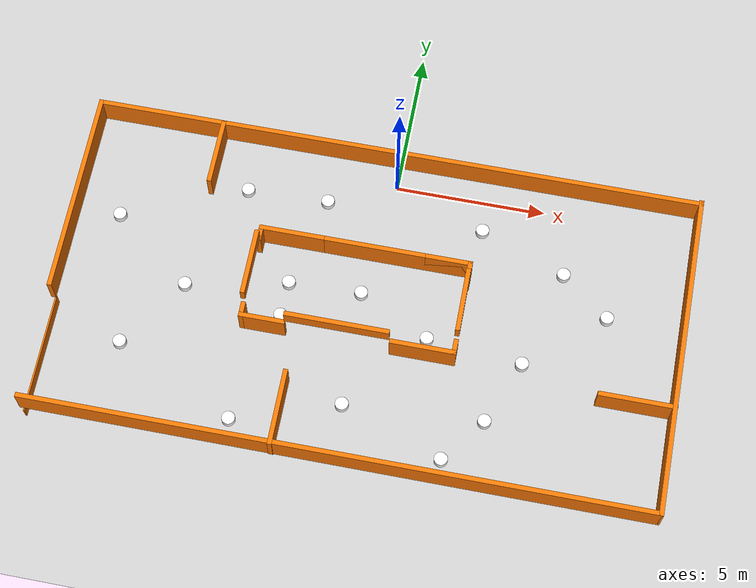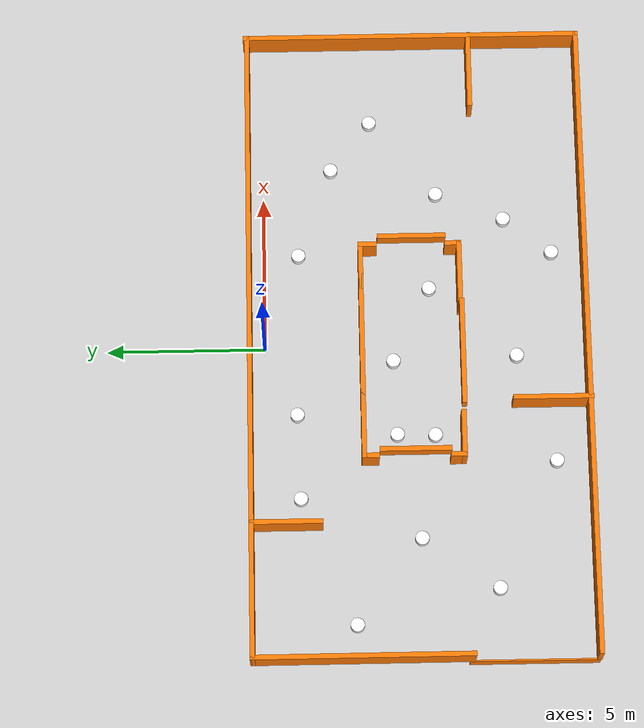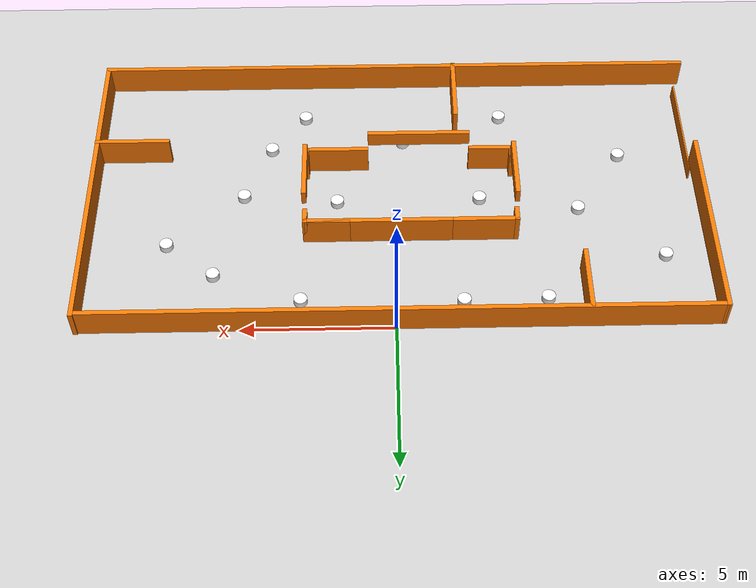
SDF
<sdf version="1.6">
 <world name="default">
  <light name="sun" type="directional">
   <pose>0 0 10 0 -0 0</pose>
   <diffuse>0.8 0.8 0.8 1</diffuse>
   <specular>0.1 0.1 0.1 1</specular>
   <attenuation>
    <range>1000</range>
    <constant>0.9</constant>
    <linear>0.01</linear>
    <quadratic>0.001</quadratic>
   </attenuation>
   <direction>-0.5 0.5 -1</direction>
  </light>
  <model name="ground_plane">
   <static>1</static>
   <link name="link">
    <collision name="collision">
     <geometry><plane><normal>0 0 1</normal><size>100 100</size></plane></geometry>
     <surface><friction><ode><mu>100</mu><mu2>50</mu2></ode></friction></surface>
    </collision>
    <visual name="visual">
     <cast_shadows>0</cast_shadows>
     <geometry><plane><normal>0 0 1</normal><size>100 100</size></plane></geometry>
     <material>
      <script><uri>file://media/materials/scripts/gazebo.material</uri><name>Gazebo/Grey</name></script>
     </material>
    </visual>
   </link>
  </model>
  <gravity>0 0 -9.8</gravity>
  <magnetic_field>6e-06 2.3e-05 -4.2e-05</magnetic_field>
  <atmosphere type="adiabatic"/>
  <physics name="default_physics" default="0" type="ode">
   <max_step_size>0.001</max_step_size>
   <real_time_factor>1</real_time_factor>
   <real_time_update_rate>1000</real_time_update_rate>
  </physics>
  <scene><ambient>0.4 0.4 0.4 1</ambient><background>0.7 0.7 0.7 1</background><shadows>1</shadows></scene>
  <spherical_coordinates>
   <surface_model>EARTH_WGS84</surface_model>
   <latitude_deg>0</latitude_deg>
   <longitude_deg>0</longitude_deg>
   <elevation>0</elevation>
   <heading_deg>0</heading_deg>
  </spherical_coordinates>
  <model name="s-maze">
   <pose>-0.10565 -4.7996 0 0 -0 0</pose>
   <link name="Wall_11">
    <collision name="Wall_11_Collision">
     <geometry><box><size>4 0.15 1.0</size></box></geometry>
     <pose>0 0 1.25 0 -0 0</pose>
    </collision>
    <visual name="Wall_11_Visual">
     <geometry><box><size>4 0.05 1.0</size></box></geometry>
     <material>
      <script><uri>file://media/materials/scripts/gazebo.material</uri><name>Gazebo/Grey</name></script>
      <ambient>0.996078 0.47451 0.0196078 1</ambient>
     </material>
    </visual>
    <pose>-10.048 -3.36287 0 0 0 -1.5708</pose>
   </link>
   <link name="Wall_12">
    <collision name="Wall_12_Collision">
     <geometry><box><size>20.25 0.15 1.0</size></box></geometry>
     <pose>0 0 1.25 0 -0 0</pose>
    </collision>
    <visual name="Wall_12_Visual">
     <pose>0 0 1.25 0 -0 0</pose>
     <geometry><box><size>20.25 0.15 1.0</size></box></geometry>
     <material>
      <script><uri>file://media/materials/scripts/gazebo.material</uri><name>Gazebo/Grey</name></script>
      <ambient>0.996078 0.47451 0.0196078 1</ambient>
     </material>
    </visual>
    <pose>0.001967 -5.28787 0 0 -0 0</pose>
   </link>
   <link name="Wall_13">
    <collision name="Wall_13_Collision">
     <geometry><box><size>10.75 0.15 1.0</size></box></geometry>
     <pose>0 0 1.25 0 -0 0</pose>
    </collision>
    <visual name="Wall_13_Visual">
     <pose>0 0 1.25 0 -0 0</pose>
     <geometry><box><size>10.75 0.15 1.0</size></box></geometry>
     <material>
      <script><uri>file://media/materials/scripts/gazebo.material</uri><name>Gazebo/Grey</name></script>
      <ambient>0.996078 0.47451 0.0196078 1</ambient>
     </material>
    </visual>
    <pose>10.052 0.012131 0 0 -0 1.5708</pose>
   </link>
   <link name="Wall_16">
    <collision name="Wall_16_Collision">
     <geometry><box><size>20.25 0.15 1.0</size></box></geometry>
     <pose>0 0 1.25 0 -0 0</pose>
    </collision>
    <visual name="Wall_16_Visual">
     <pose>0 0 1.25 0 -0 0</pose>
     <geometry><box><size>20.25 0.15 1.0</size></box></geometry>
     <material>
      <script><uri>file://media/materials/scripts/gazebo.material</uri><name>Gazebo/Grey</name></script>
      <ambient>0.996078 0.47451 0.0196078 1</ambient>
     </material>
    </visual>
    <pose>-0.010244 5.26717 0 0 -0 0</pose>
   </link>
   <link name="Wall_18">
    <collision name="Wall_18_Collision">
     <geometry><box><size>2.25 0.15 1.0</size></box></geometry>
     <pose>0 0 1.25 0 -0 0</pose>
    </collision>
    <visual name="Wall_18_Visual">
     <pose>0 0 1.25 0 -0 0</pose>
     <geometry><box><size>2.25 0.15 1.0</size></box></geometry>
     <material>
      <script><uri>file://media/materials/scripts/gazebo.material</uri><name>Gazebo/Grey</name></script>
      <ambient>0.996078 0.47451 0.0196078 1</ambient>
     </material>
    </visual>
    <pose>-5.8756 4.1915 0 0 0 -1.5708</pose>
   </link>
   <link name="Wall_20">
    <collision name="Wall_20_Collision">
     <geometry><box><size>2.5 0.15 1.0</size></box></geometry>
     <pose>0 0 1.25 0 -0 0</pose>
    </collision>
    <visual name="Wall_20_Visual">
     <pose>0 0 1.25 0 -0 0</pose>
     <geometry><box><size>2.5 0.15 1.0</size></box></geometry>
     <material>
      <script><uri>file://media/materials/scripts/gazebo.material</uri><name>Gazebo/Grey</name></script>
      <ambient>0.996078 0.47451 0.0196078 1</ambient>
     </material>
    </visual>
    <pose>-2.04112 -4.13713 0 0 -0 1.5708</pose>
   </link>
   <link name="Wall_22">
    <collision name="Wall_22_Collision">
     <geometry><box><size>2.5 0.15 1.0</size></box></geometry>
     <pose>0 0 1.25 0 -0 0</pose>
    </collision>
    <visual name="Wall_22_Visual">
     <pose>0 0 1.25 0 -0 0</pose>
     <geometry><box><size>2.5 0.15 1.0</size></box></geometry>
     <material>
      <script><uri>file://media/materials/scripts/gazebo.material</uri><name>Gazebo/Grey</name></script>
      <ambient>0.996078 0.47451 0.0196078 1</ambient>
     </material>
    </visual>
    <pose>8.88538 -1.82943 0 0 -0 3.14159</pose>
   </link>
   <link name="Wall_24">
    <pose>0.594958 1.7588 0 0 -0 0</pose>
    <visual name="Wall_24_Visual_0">
     <pose>0 0 1.25 0 -0 0</pose>
     <geometry><box><size>5 0.15 1.0</size></box></geometry>
     <material>
      <script><uri>file://media/materials/scripts/gazebo.material</uri><name>Gazebo/Grey</name></script>
      <ambient>0.996078 0.47451 0.0196078 1</ambient>
     </material>
    </visual>
    <collision name="Wall_24_Collision_0">
     <geometry><box><size>5 0.15 1.0</size></box></geometry>
     <pose>0 0 1.25 0 -0 0</pose>
    </collision>
    <visual name="Wall_24_Visual_1">
     <pose>1.73121 0 1.25 0 -0 0</pose>
     <geometry><box><size>1.53757 0.15 1.0</size></box></geometry>
     <material>
      <script><uri>file://media/materials/scripts/gazebo.material</uri><name>Gazebo/Grey</name></script>
      <ambient>0.996078 0.47451 0.0196078 1</ambient>
     </material>
    </visual>
    <collision name="Wall_24_Collision_1">
     <geometry><box><size>1.53757 0.15 1.0</size></box></geometry>
     <pose>1.73121 0 1.25 0 -0 0</pose>
    </collision>
   </link>
   <link name="Wall_25">
    <pose>3.01996 0.2088 0 0 0 -1.5708</pose>
    <visual name="Wall_25_Visual_0">
     <pose>-1.32879 0 1.25 0 -0 0</pose>
     <geometry><box><size>0.592416 0.15 1.0</size></box></geometry>
     <material>
      <script><uri>file://media/materials/scripts/gazebo.material</uri><name>Gazebo/Grey</name></script>
      <ambient>0.996078 0.47451 0.0196078 1</ambient>
     </material>
    </visual>
    <collision name="Wall_25_Collision_0">
     <geometry><box><size>0.592416 0.15 1.0</size></box></geometry>
     <pose>-1.32879 0 1.25 0 -0 0</pose>
    </collision>
    <visual name="Wall_25_Visual_1">
     <pose>1.36184 0 1.25 0 -0 0</pose>
     <geometry><box><size>0.526327 0.15 1.0</size></box></geometry>
     <material>
      <script><uri>file://media/materials/scripts/gazebo.material</uri><name>Gazebo/Grey</name></script>
      <ambient>0.996078 0.47451 0.0196078 1</ambient>
     </material>
    </visual>
    <collision name="Wall_25_Collision_1">
     <geometry><box><size>0.526327 0.15 1.0</size></box></geometry>
     <pose>1.36184 0 1.25 0 -0 0</pose>
    </collision>
    <visual name="Wall_25_Visual_2">
     <pose>0.033044 0 2.25 0 -0 0</pose>
     <geometry><box><size>2.13126 0.15 0.5</size></box></geometry>
     <material>
      <script><uri>file://media/materials/scripts/gazebo.material</uri><name>Gazebo/Grey</name></script>
      <ambient>0.996078 0.47451 0.0196078 1</ambient>
     </material>
    </visual>
    <collision name="Wall_25_Collision_2">
     <geometry><box><size>2.13126 0.15 0.5</size></box></geometry>
     <pose>0.033044 0 2.25 0 -0 0</pose>
    </collision>
   </link>
   <link name="Wall_26">
    <pose>-0.405042 -1.3412 0 0 -0 3.14159</pose>
    <visual name="Wall_26_Visual_0">
     <pose>-2.43219 0 1.25 0 -0 0</pose>
     <geometry><box><size>2.13561 0.15 1.0</size></box></geometry>
     <material>
      <script><uri>file://media/materials/scripts/gazebo.material</uri><name>Gazebo/Grey</name></script>
      <ambient>0.996078 0.47451 0.0196078 1</ambient>
     </material>
    </visual>
    <collision name="Wall_26_Collision_0">
     <geometry><box><size>2.13561 0.15 1.0</size></box></geometry>
     <pose>-2.43219 0 1.25 0 -0 0</pose>
    </collision>
    <visual name="Wall_26_Visual_1">
     <pose>2.74906 0 1.25 0 -0 0</pose>
     <geometry><box><size>1.50187 0.15 1.0</size></box></geometry>
     <material>
      <script><uri>file://media/materials/scripts/gazebo.material</uri><name>Gazebo/Grey</name></script>
      <ambient>0.996078 0.47451 0.0196078 1</ambient>
     </material>
    </visual>
    <collision name="Wall_26_Collision_1">
     <geometry><box><size>1.50187 0.15 1.0</size></box></geometry>
     <pose>2.74906 0 1.25 0 -0 0</pose>
    </collision>
    <visual name="Wall_26_Visual_2">
     <pose>0.316869 0 2.25 0 -0 0</pose>
     <geometry><box><size>3.36251 0.15 0.5</size></box></geometry>
     <material>
      <script><uri>file://media/materials/scripts/gazebo.material</uri><name>Gazebo/Grey</name></script>
      <ambient>0.996078 0.47451 0.0196078 1</ambient>
     </material>
    </visual>
    <collision name="Wall_26_Collision_2">
     <geometry><box><size>3.36251 0.15 0.5</size></box></geometry>
     <pose>0.316869 0 2.25 0 -0 0</pose>
    </collision>
   </link>
   <link name="Wall_27">
    <pose>-3.83004 0.2088 0 0 -0 1.5708</pose>
    <visual name="Wall_27_Visual_0">
     <pose>-1.37063 0 1.25 0 -0 0</pose>
     <geometry><box><size>0.508738 0.15 1.0</size></box></geometry>
     <material>
      <script><uri>file://media/materials/scripts/gazebo.material</uri><name>Gazebo/Grey</name></script>
      <ambient>0.996078 0.47451 0.0196078 1</ambient>
     </material>
    </visual>
    <collision name="Wall_27_Collision_0">
     <geometry><box><size>0.508738 0.15 1.0</size></box></geometry>
     <pose>-1.37063 0 1.25 0 -0 0</pose>
    </collision>
    <visual name="Wall_27_Visual_1">
     <pose>1.35518 0 1.25 0 -0 0</pose>
     <geometry><box><size>0.539648 0.15 1.0</size></box></geometry>
     <material>
      <script><uri>file://media/materials/scripts/gazebo.material</uri><name>Gazebo/Grey</name></script>
      <ambient>0.996078 0.47451 0.0196078 1</ambient>
     </material>
    </visual>
    <collision name="Wall_27_Collision_1">
     <geometry><box><size>0.539648 0.15 1.0</size></box></geometry>
     <pose>1.35518 0 1.25 0 -0 0</pose>
    </collision>
    <visual name="Wall_27_Visual_2">
     <pose>-0.015455 0 2.25 0 -0 0</pose>
     <geometry><box><size>2.20161 0.15 0.5</size></box></geometry>
     <material>
      <script><uri>file://media/materials/scripts/gazebo.material</uri><name>Gazebo/Grey</name></script>
      <ambient>0.996078 0.47451 0.0196078 1</ambient>
     </material>
    </visual>
    <collision name="Wall_27_Collision_2">
     <geometry><box><size>2.20161 0.15 0.5</size></box></geometry>
     <pose>-0.015455 0 2.25 0 -0 0</pose>
    </collision>
   </link>
   <link name="Wall_28">
    <collision name="Wall_28_Collision">
     <geometry><box><size>2.15 0.15 1.0</size></box></geometry>
     <pose>0 0 1.25 0 -0 0</pose>
    </collision>
    <visual name="Wall_28_Visual">
     <pose>0 0 1.25 0 -0 0</pose>
     <geometry><box><size>2.15 0.15 1.0</size></box></geometry>
     <material>
      <script><uri>file://media/materials/scripts/gazebo.material</uri><name>Gazebo/Grey</name></script>
      <ambient>0.996078 0.47451 0.0196078 1</ambient>
     </material>
    </visual>
    <pose>-2.83004 1.7588 0 0 -0 0</pose>
   </link>
   <link name="Wall_9">
    <collision name="Wall_9_Collision">
     <geometry><box><size>6.85505 0.15 1.0</size></box></geometry>
     <pose>0 0 1.25 0 -0 0</pose>
    </collision>
    <visual name="Wall_9_Visual">
     <pose>0 0 1.25 0 -0 0</pose>
     <geometry><box><size>6.85505 0.15 1.0</size></box></geometry>
     <material>
      <script><uri>file://media/materials/scripts/gazebo.material</uri><name>Gazebo/Grey</name></script>
      <ambient>0.996078 0.47451 0.0196078 1</ambient>
     </material>
    </visual>
    <pose>-10.0541 1.91465 0 0 0 -1.56898</pose>
   </link>
   <static>1</static>
  </model>
  <model name="beer_wide">
   <link name="link">
    <pose>0 0 0.115 0 -0 0</pose>
    <inertial>
     <mass>6.24059</mass>
     <inertia>
      <ixx>0.0320853</ixx>
      <ixy>0</ixy>
      <ixz>0</ixz>
      <iyy>0.0320853</iyy>
      <iyz>0</iyz>
      <izz>0.0486491</izz>
     </inertia>
    </inertial>
    <visual name="visual">
     <geometry><cylinder><radius>0.220014</radius><length>0.23</length></cylinder></geometry>
     <material>
      <script>
       <uri>model://beer/materials/scripts</uri>
       <uri>model://beer/materials/textures</uri>
       <name>Beer/Diffuse</name>
      </script>
      <ambient>1 1 1 1</ambient>
      <diffuse>1 1 1 1</diffuse>
      <specular>0 0 0 1</specular>
      <emissive>0 0 0 1</emissive>
     </material>
    </visual>
    <collision name="collision">
     <geometry><cylinder><radius>0.220014</radius><length>0.23</length></cylinder></geometry>
     <surface>
      <friction>
       <ode><mu>1</mu><mu2>1</mu2><fdir1>0 0 0</fdir1><slip1>0</slip1><slip2>0</slip2></ode>
       <torsional>
        <coefficient>1</coefficient>
        <patch_radius>0</patch_radius>
        <surface_radius>0</surface_radius>
        <use_patch_radius>1</use_patch_radius>
        <ode><slip>0</slip></ode>
       </torsional>
      </friction>
      <bounce><restitution_coefficient>0</restitution_coefficient><threshold>1e+06</threshold></bounce>
      <contact>
       <collide_without_contact>0</collide_without_contact>
       <collide_without_contact_bitmask>1</collide_without_contact_bitmask>
       <collide_bitmask>1</collide_bitmask>
       <ode>
        <soft_cfm>0</soft_cfm>
        <soft_erp>0.2</soft_erp>
        <kp>1e+13</kp>
        <kd>1</kd>
        <max_vel>0.01</max_vel>
        <min_depth>0</min_depth>
       </ode>
       <bullet>
        <split_impulse>1</split_impulse>
        <split_impulse_penetration_threshold>-0.01</split_impulse_penetration_threshold>
        <soft_cfm>0</soft_cfm>
        <soft_erp>0.2</soft_erp>
        <kp>1e+13</kp>
        <kd>1</kd>
       </bullet>
      </contact>
     </surface>
    </collision>
   </link>
   <static>0</static>
   <pose>-2.18452 -0.986073 -5e-06 -2.2e-05 2.3e-05 0.000346</pose>
  </model>
  <model name="beer_wide_0">
   <link name="link">
    <pose>0 0 0.115 0 -0 0</pose>
    <inertial>
     <mass>6.24059</mass>
     <inertia>
      <ixx>0.0320853</ixx>
      <ixy>0</ixy>
      <ixz>0</ixz>
      <iyy>0.0320853</iyy>
      <iyz>0</iyz>
      <izz>0.0486491</izz>
     </inertia>
    </inertial>
    <visual name="visual">
     <geometry><cylinder><radius>0.220014</radius><length>0.23</length></cylinder></geometry>
     <material>
      <script>
       <uri>model://beer/materials/scripts</uri>
       <uri>model://beer/materials/textures</uri>
       <name>Beer/Diffuse</name>
      </script>
      <ambient>1 1 1 1</ambient>
      <diffuse>1 1 1 1</diffuse>
      <specular>0 0 0 1</specular>
      <emissive>0 0 0 1</emissive>
     </material>
    </visual>
    <collision name="collision">
     <geometry><cylinder><radius>0.220014</radius><length>0.23</length></cylinder></geometry>
     <surface>
      <friction>
       <ode><mu>1</mu><mu2>1</mu2><fdir1>0 0 0</fdir1><slip1>0</slip1><slip2>0</slip2></ode>
       <torsional>
        <coefficient>1</coefficient>
        <patch_radius>0</patch_radius>
        <surface_radius>0</surface_radius>
        <use_patch_radius>1</use_patch_radius>
        <ode><slip>0</slip></ode>
       </torsional>
      </friction>
      <bounce><restitution_coefficient>0</restitution_coefficient><threshold>1e+06</threshold></bounce>
      <contact>
       <collide_without_contact>0</collide_without_contact>
       <collide_without_contact_bitmask>1</collide_without_contact_bitmask>
       <collide_bitmask>1</collide_bitmask>
       <ode>
        <soft_cfm>0</soft_cfm>
        <soft_erp>0.2</soft_erp>
        <kp>1e+13</kp>
        <kd>1</kd>
        <max_vel>0.01</max_vel>
        <min_depth>0</min_depth>
       </ode>
       <bullet>
        <split_impulse>1</split_impulse>
        <split_impulse_penetration_threshold>-0.01</split_impulse_penetration_threshold>
        <soft_cfm>0</soft_cfm>
        <soft_erp>0.2</soft_erp>
        <kp>1e+13</kp>
        <kd>1</kd>
       </bullet>
      </contact>
     </surface>
    </collision>
   </link>
   <static>0</static>
   <pose>3.07769 -1.08119 -7e-06 3.1e-05 -3.1e-05 0.000325</pose>
  </model>
  <model name="beer_wide_1">
   <link name="link">
    <pose>0 0 0.115 0 -0 0</pose>
    <inertial>
     <mass>6.24059</mass>
     <inertia>
      <ixx>0.0320853</ixx>
      <ixy>0</ixy>
      <ixz>0</ixz>
      <iyy>0.0320853</iyy>
      <iyz>0</iyz>
      <izz>0.0486491</izz>
     </inertia>
    </inertial>
    <visual name="visual">
     <geometry><cylinder><radius>0.220014</radius><length>0.23</length></cylinder></geometry>
     <material>
      <script>
       <uri>model://beer/materials/scripts</uri>
       <uri>model://beer/materials/textures</uri>
       <name>Beer/Diffuse</name>
      </script>
      <ambient>1 1 1 1</ambient>
      <diffuse>1 1 1 1</diffuse>
      <specular>0 0 0 1</specular>
      <emissive>0 0 0 1</emissive>
     </material>
    </visual>
    <collision name="collision">
     <geometry><cylinder><radius>0.220014</radius><length>0.23</length></cylinder></geometry>
     <surface>
      <friction>
       <ode><mu>1</mu><mu2>1</mu2><fdir1>0 0 0</fdir1><slip1>0</slip1><slip2>0</slip2></ode>
       <torsional>
        <coefficient>1</coefficient>
        <patch_radius>0</patch_radius>
        <surface_radius>0</surface_radius>
        <use_patch_radius>1</use_patch_radius>
        <ode><slip>0</slip></ode>
       </torsional>
      </friction>
      <bounce><restitution_coefficient>0</restitution_coefficient><threshold>1e+06</threshold></bounce>
      <contact>
       <collide_without_contact>0</collide_without_contact>
       <collide_without_contact_bitmask>1</collide_without_contact_bitmask>
       <collide_bitmask>1</collide_bitmask>
       <ode>
        <soft_cfm>0</soft_cfm>
        <soft_erp>0.2</soft_erp>
        <kp>1e+13</kp>
        <kd>1</kd>
        <max_vel>0.01</max_vel>
        <min_depth>0</min_depth>
       </ode>
       <bullet>
        <split_impulse>1</split_impulse>
        <split_impulse_penetration_threshold>-0.01</split_impulse_penetration_threshold>
        <soft_cfm>0</soft_cfm>
        <soft_erp>0.2</soft_erp>
        <kp>1e+13</kp>
        <kd>1</kd>
       </bullet>
      </contact>
     </surface>
    </collision>
   </link>
   <static>0</static>
   <pose>-8.91608 -2.74898 -5e-06 -2.2e-05 2.3e-05 0.000303</pose>
  </model>
  <model name="beer_wide_2">
   <link name="link">
    <pose>0 0 0.115 0 -0 0</pose>
    <inertial>
     <mass>6.24059</mass>
     <inertia>
      <ixx>0.0320853</ixx>
      <ixy>0</ixy>
      <ixz>0</ixz>
      <iyy>0.0320853</iyy>
      <iyz>0</iyz>
      <izz>0.0486491</izz>
     </inertia>
    </inertial>
    <visual name="visual">
     <geometry><cylinder><radius>0.220014</radius><length>0.23</length></cylinder></geometry>
     <material>
      <script>
       <uri>model://beer/materials/scripts</uri>
       <uri>model://beer/materials/textures</uri>
       <name>Beer/Diffuse</name>
      </script>
      <ambient>1 1 1 1</ambient>
      <diffuse>1 1 1 1</diffuse>
      <specular>0 0 0 1</specular>
      <emissive>0 0 0 1</emissive>
     </material>
    </visual>
    <collision name="collision">
     <geometry><cylinder><radius>0.220014</radius><length>0.23</length></cylinder></geometry>
     <surface>
      <friction>
       <ode><mu>1</mu><mu2>1</mu2><fdir1>0 0 0</fdir1><slip1>0</slip1><slip2>0</slip2></ode>
       <torsional>
        <coefficient>1</coefficient>
        <patch_radius>0</patch_radius>
        <surface_radius>0</surface_radius>
        <use_patch_radius>1</use_patch_radius>
        <ode><slip>0</slip></ode>
       </torsional>
      </friction>
      <bounce><restitution_coefficient>0</restitution_coefficient><threshold>1e+06</threshold></bounce>
      <contact>
       <collide_without_contact>0</collide_without_contact>
       <collide_without_contact_bitmask>1</collide_without_contact_bitmask>
       <collide_bitmask>1</collide_bitmask>
       <ode>
        <soft_cfm>0</soft_cfm>
        <soft_erp>0.2</soft_erp>
        <kp>1e+13</kp>
        <kd>1</kd>
        <max_vel>0.01</max_vel>
        <min_depth>0</min_depth>
       </ode>
       <bullet>
        <split_impulse>1</split_impulse>
        <split_impulse_penetration_threshold>-0.01</split_impulse_penetration_threshold>
        <soft_cfm>0</soft_cfm>
        <soft_erp>0.2</soft_erp>
        <kp>1e+13</kp>
        <kd>1</kd>
       </bullet>
      </contact>
     </surface>
    </collision>
   </link>
   <static>0</static>
   <pose>-7.82255 -7.18241 -7e-06 3.1e-05 -3.1e-05 0.000282</pose>
  </model>
  <model name="beer_wide_3">
   <link name="link">
    <pose>0 0 0.115 0 -0 0</pose>
    <inertial>
     <mass>6.24059</mass>
     <inertia>
      <ixx>0.0320853</ixx>
      <ixy>0</ixy>
      <ixz>0</ixz>
      <iyy>0.0320853</iyy>
      <iyz>0</iyz>
      <izz>0.0486491</izz>
     </inertia>
    </inertial>
    <visual name="visual">
     <geometry><cylinder><radius>0.220014</radius><length>0.23</length></cylinder></geometry>
     <material>
      <script>
       <uri>model://beer/materials/scripts</uri>
       <uri>model://beer/materials/textures</uri>
       <name>Beer/Diffuse</name>
      </script>
      <ambient>1 1 1 1</ambient>
      <diffuse>1 1 1 1</diffuse>
      <specular>0 0 0 1</specular>
      <emissive>0 0 0 1</emissive>
     </material>
    </visual>
    <collision name="collision">
     <geometry><cylinder><radius>0.220014</radius><length>0.23</length></cylinder></geometry>
     <surface>
      <friction>
       <ode><mu>1</mu><mu2>1</mu2><fdir1>0 0 0</fdir1><slip1>0</slip1><slip2>0</slip2></ode>
       <torsional>
        <coefficient>1</coefficient>
        <patch_radius>0</patch_radius>
        <surface_radius>0</surface_radius>
        <use_patch_radius>1</use_patch_radius>
        <ode><slip>0</slip></ode>
       </torsional>
      </friction>
      <bounce><restitution_coefficient>0</restitution_coefficient><threshold>1e+06</threshold></bounce>
      <contact>
       <collide_without_contact>0</collide_without_contact>
       <collide_without_contact_bitmask>1</collide_without_contact_bitmask>
       <collide_bitmask>1</collide_bitmask>
       <ode>
        <soft_cfm>0</soft_cfm>
        <soft_erp>0.2</soft_erp>
        <kp>1e+13</kp>
        <kd>1</kd>
        <max_vel>0.01</max_vel>
        <min_depth>0</min_depth>
       </ode>
       <bullet>
        <split_impulse>1</split_impulse>
        <split_impulse_penetration_threshold>-0.01</split_impulse_penetration_threshold>
        <soft_cfm>0</soft_cfm>
        <soft_erp>0.2</soft_erp>
        <kp>1e+13</kp>
        <kd>1</kd>
       </bullet>
      </contact>
     </surface>
    </collision>
   </link>
   <static>0</static>
   <pose>-6.21255 -4.81025 -5e-06 -2.2e-05 2.3e-05 0.00026</pose>
  </model>
  <model name="beer_wide_4">
   <link name="link">
    <pose>0 0 0.115 0 -0 0</pose>
    <inertial>
     <mass>6.24059</mass>
     <inertia>
      <ixx>0.0320853</ixx>
      <ixy>0</ixy>
      <ixz>0</ixz>
      <iyy>0.0320853</iyy>
      <iyz>0</iyz>
      <izz>0.0486491</izz>
     </inertia>
    </inertial>
    <visual name="visual">
     <geometry><cylinder><radius>0.220014</radius><length>0.23</length></cylinder></geometry>
     <material>
      <script>
       <uri>model://beer/materials/scripts</uri>
       <uri>model://beer/materials/textures</uri>
       <name>Beer/Diffuse</name>
      </script>
      <ambient>1 1 1 1</ambient>
      <diffuse>1 1 1 1</diffuse>
      <specular>0 0 0 1</specular>
      <emissive>0 0 0 1</emissive>
     </material>
    </visual>
    <collision name="collision">
     <geometry><cylinder><radius>0.220014</radius><length>0.23</length></cylinder></geometry>
     <surface>
      <friction>
       <ode><mu>1</mu><mu2>1</mu2><fdir1>0 0 0</fdir1><slip1>0</slip1><slip2>0</slip2></ode>
       <torsional>
        <coefficient>1</coefficient>
        <patch_radius>0</patch_radius>
        <surface_radius>0</surface_radius>
        <use_patch_radius>1</use_patch_radius>
        <ode><slip>0</slip></ode>
       </torsional>
      </friction>
      <bounce><restitution_coefficient>0</restitution_coefficient><threshold>1e+06</threshold></bounce>
      <contact>
       <collide_without_contact>0</collide_without_contact>
       <collide_without_contact_bitmask>1</collide_without_contact_bitmask>
       <collide_bitmask>1</collide_bitmask>
       <ode>
        <soft_cfm>0</soft_cfm>
        <soft_erp>0.2</soft_erp>
        <kp>1e+13</kp>
        <kd>1</kd>
        <max_vel>0.01</max_vel>
        <min_depth>0</min_depth>
       </ode>
       <bullet>
        <split_impulse>1</split_impulse>
        <split_impulse_penetration_threshold>-0.01</split_impulse_penetration_threshold>
        <soft_cfm>0</soft_cfm>
        <soft_erp>0.2</soft_erp>
        <kp>1e+13</kp>
        <kd>1</kd>
       </bullet>
      </contact>
     </surface>
    </collision>
   </link>
   <static>0</static>
   <pose>-2.86637 -4.11416 -7e-06 3.1e-05 -3.1e-05 0.000238</pose>
  </model>
  <model name="beer_wide_5">
   <link name="link">
    <pose>0 0 0.115 0 -0 0</pose>
    <inertial>
     <mass>6.24059</mass>
     <inertia>
      <ixx>0.0320853</ixx>
      <ixy>0</ixy>
      <ixz>0</ixz>
      <iyy>0.0320853</iyy>
      <iyz>0</iyz>
      <izz>0.0486491</izz>
     </inertia>
    </inertial>
    <visual name="visual">
     <geometry><cylinder><radius>0.220014</radius><length>0.23</length></cylinder></geometry>
     <material>
      <script>
       <uri>model://beer/materials/scripts</uri>
       <uri>model://beer/materials/textures</uri>
       <name>Beer/Diffuse</name>
      </script>
      <ambient>1 1 1 1</ambient>
      <diffuse>1 1 1 1</diffuse>
      <specular>0 0 0 1</specular>
      <emissive>0 0 0 1</emissive>
     </material>
    </visual>
    <collision name="collision">
     <geometry><cylinder><radius>0.220014</radius><length>0.23</length></cylinder></geometry>
     <surface>
      <friction>
       <ode><mu>1</mu><mu2>1</mu2><fdir1>0 0 0</fdir1><slip1>0</slip1><slip2>0</slip2></ode>
       <torsional>
        <coefficient>1</coefficient>
        <patch_radius>0</patch_radius>
        <surface_radius>0</surface_radius>
        <use_patch_radius>1</use_patch_radius>
        <ode><slip>0</slip></ode>
       </torsional>
      </friction>
      <bounce><restitution_coefficient>0</restitution_coefficient><threshold>1e+06</threshold></bounce>
      <contact>
       <collide_without_contact>0</collide_without_contact>
       <collide_without_contact_bitmask>1</collide_without_contact_bitmask>
       <collide_bitmask>1</collide_bitmask>
       <ode>
        <soft_cfm>0</soft_cfm>
        <soft_erp>0.2</soft_erp>
        <kp>1e+13</kp>
        <kd>1</kd>
        <max_vel>0.01</max_vel>
        <min_depth>0</min_depth>
       </ode>
       <bullet>
        <split_impulse>1</split_impulse>
        <split_impulse_penetration_threshold>-0.01</split_impulse_penetration_threshold>
        <soft_cfm>0</soft_cfm>
        <soft_erp>0.2</soft_erp>
        <kp>1e+13</kp>
        <kd>1</kd>
       </bullet>
      </contact>
     </surface>
    </collision>
   </link>
   <static>0</static>
   <pose>-2.90105 -5.30646 -5e-06 -2.2e-05 2.3e-05 0.000217</pose>
  </model>
  <model name="beer_wide_6">
   <link name="link">
    <pose>0 0 0.115 0 -0 0</pose>
    <inertial>
     <mass>6.24059</mass>
     <inertia>
      <ixx>0.0320853</ixx>
      <ixy>0</ixy>
      <ixz>0</ixz>
      <iyy>0.0320853</iyy>
      <iyz>0</iyz>
      <izz>0.0486491</izz>
     </inertia>
    </inertial>
    <visual name="visual">
     <geometry><cylinder><radius>0.220014</radius><length>0.23</length></cylinder></geometry>
     <material>
      <script>
       <uri>model://beer/materials/scripts</uri>
       <uri>model://beer/materials/textures</uri>
       <name>Beer/Diffuse</name>
      </script>
      <ambient>1 1 1 1</ambient>
      <diffuse>1 1 1 1</diffuse>
      <specular>0 0 0 1</specular>
      <emissive>0 0 0 1</emissive>
     </material>
    </visual>
    <collision name="collision">
     <geometry><cylinder><radius>0.220014</radius><length>0.23</length></cylinder></geometry>
     <surface>
      <friction>
       <ode><mu>1</mu><mu2>1</mu2><fdir1>0 0 0</fdir1><slip1>0</slip1><slip2>0</slip2></ode>
       <torsional>
        <coefficient>1</coefficient>
        <patch_radius>0</patch_radius>
        <surface_radius>0</surface_radius>
        <use_patch_radius>1</use_patch_radius>
        <ode><slip>0</slip></ode>
       </torsional>
      </friction>
      <bounce><restitution_coefficient>0</restitution_coefficient><threshold>1e+06</threshold></bounce>
      <contact>
       <collide_without_contact>0</collide_without_contact>
       <collide_without_contact_bitmask>1</collide_without_contact_bitmask>
       <collide_bitmask>1</collide_bitmask>
       <ode>
        <soft_cfm>0</soft_cfm>
        <soft_erp>0.2</soft_erp>
        <kp>1e+13</kp>
        <kd>1</kd>
        <max_vel>0.01</max_vel>
        <min_depth>0</min_depth>
       </ode>
       <bullet>
        <split_impulse>1</split_impulse>
        <split_impulse_penetration_threshold>-0.01</split_impulse_penetration_threshold>
        <soft_cfm>0</soft_cfm>
        <soft_erp>0.2</soft_erp>
        <kp>1e+13</kp>
        <kd>1</kd>
       </bullet>
      </contact>
     </surface>
    </collision>
   </link>
   <static>0</static>
   <pose>-0.4624 -4.03962 -7e-06 3.1e-05 -3.1e-05 0.000195</pose>
  </model>
  <model name="beer_wide_7">
   <link name="link">
    <pose>0 0 0.115 0 -0 0</pose>
    <inertial>
     <mass>6.24059</mass>
     <inertia>
      <ixx>0.0320853</ixx>
      <ixy>0</ixy>
      <ixz>0</ixz>
      <iyy>0.0320853</iyy>
      <iyz>0</iyz>
      <izz>0.0486491</izz>
     </inertia>
    </inertial>
    <visual name="visual">
     <geometry><cylinder><radius>0.220014</radius><length>0.23</length></cylinder></geometry>
     <material>
      <script>
       <uri>model://beer/materials/scripts</uri>
       <uri>model://beer/materials/textures</uri>
       <name>Beer/Diffuse</name>
      </script>
      <ambient>1 1 1 1</ambient>
      <diffuse>1 1 1 1</diffuse>
      <specular>0 0 0 1</specular>
      <emissive>0 0 0 1</emissive>
     </material>
    </visual>
    <collision name="collision">
     <geometry><cylinder><radius>0.220014</radius><length>0.23</length></cylinder></geometry>
     <surface>
      <friction>
       <ode><mu>1</mu><mu2>1</mu2><fdir1>0 0 0</fdir1><slip1>0</slip1><slip2>0</slip2></ode>
       <torsional>
        <coefficient>1</coefficient>
        <patch_radius>0</patch_radius>
        <surface_radius>0</surface_radius>
        <use_patch_radius>1</use_patch_radius>
        <ode><slip>0</slip></ode>
       </torsional>
      </friction>
      <bounce><restitution_coefficient>0</restitution_coefficient><threshold>1e+06</threshold></bounce>
      <contact>
       <collide_without_contact>0</collide_without_contact>
       <collide_without_contact_bitmask>1</collide_without_contact_bitmask>
       <collide_bitmask>1</collide_bitmask>
       <ode>
        <soft_cfm>0</soft_cfm>
        <soft_erp>0.2</soft_erp>
        <kp>1e+13</kp>
        <kd>1</kd>
        <max_vel>0.01</max_vel>
        <min_depth>0</min_depth>
       </ode>
       <bullet>
        <split_impulse>1</split_impulse>
        <split_impulse_penetration_threshold>-0.01</split_impulse_penetration_threshold>
        <soft_cfm>0</soft_cfm>
        <soft_erp>0.2</soft_erp>
        <kp>1e+13</kp>
        <kd>1</kd>
       </bullet>
      </contact>
     </surface>
    </collision>
   </link>
   <static>0</static>
   <pose>-0.33888 -7.94356 -5e-06 -2.2e-05 2.3e-05 0.000174</pose>
  </model>
  <model name="beer_wide_8">
   <link name="link">
    <pose>0 0 0.115 0 -0 0</pose>
    <inertial>
     <mass>6.24059</mass>
     <inertia>
      <ixx>0.0320853</ixx>
      <ixy>0</ixy>
      <ixz>0</ixz>
      <iyy>0.0320853</iyy>
      <iyz>0</iyz>
      <izz>0.0486491</izz>
     </inertia>
    </inertial>
    <visual name="visual">
     <geometry><cylinder><radius>0.220014</radius><length>0.23</length></cylinder></geometry>
     <material>
      <script>
       <uri>model://beer/materials/scripts</uri>
       <uri>model://beer/materials/textures</uri>
       <name>Beer/Diffuse</name>
      </script>
      <ambient>1 1 1 1</ambient>
      <diffuse>1 1 1 1</diffuse>
      <specular>0 0 0 1</specular>
      <emissive>0 0 0 1</emissive>
     </material>
    </visual>
    <collision name="collision">
     <geometry><cylinder><radius>0.220014</radius><length>0.23</length></cylinder></geometry>
     <surface>
      <friction>
       <ode><mu>1</mu><mu2>1</mu2><fdir1>0 0 0</fdir1><slip1>0</slip1><slip2>0</slip2></ode>
       <torsional>
        <coefficient>1</coefficient>
        <patch_radius>0</patch_radius>
        <surface_radius>0</surface_radius>
        <use_patch_radius>1</use_patch_radius>
        <ode><slip>0</slip></ode>
       </torsional>
      </friction>
      <bounce><restitution_coefficient>0</restitution_coefficient><threshold>1e+06</threshold></bounce>
      <contact>
       <collide_without_contact>0</collide_without_contact>
       <collide_without_contact_bitmask>1</collide_without_contact_bitmask>
       <collide_bitmask>1</collide_bitmask>
       <ode>
        <soft_cfm>0</soft_cfm>
        <soft_erp>0.2</soft_erp>
        <kp>1e+13</kp>
        <kd>1</kd>
        <max_vel>0.01</max_vel>
        <min_depth>0</min_depth>
       </ode>
       <bullet>
        <split_impulse>1</split_impulse>
        <split_impulse_penetration_threshold>-0.01</split_impulse_penetration_threshold>
        <soft_cfm>0</soft_cfm>
        <soft_erp>0.2</soft_erp>
        <kp>1e+13</kp>
        <kd>1</kd>
       </bullet>
      </contact>
     </surface>
    </collision>
   </link>
   <static>0</static>
   <pose>4.2213 -7.65204 -7e-06 3.1e-05 -3.1e-05 0.000152</pose>
  </model>
  <model name="beer_wide_9">
   <link name="link">
    <pose>0 0 0.115 0 -0 0</pose>
    <inertial>
     <mass>6.24059</mass>
     <inertia>
      <ixx>0.0320853</ixx>
      <ixy>0</ixy>
      <ixz>0</ixz>
      <iyy>0.0320853</iyy>
      <iyz>0</iyz>
      <izz>0.0486491</izz>
     </inertia>
    </inertial>
    <visual name="visual">
     <geometry><cylinder><radius>0.220014</radius><length>0.23</length></cylinder></geometry>
     <material>
      <script>
       <uri>model://beer/materials/scripts</uri>
       <uri>model://beer/materials/textures</uri>
       <name>Beer/Diffuse</name>
      </script>
      <ambient>1 1 1 1</ambient>
      <diffuse>1 1 1 1</diffuse>
      <specular>0 0 0 1</specular>
      <emissive>0 0 0 1</emissive>
     </material>
    </visual>
    <collision name="collision">
     <geometry><cylinder><radius>0.220014</radius><length>0.23</length></cylinder></geometry>
     <surface>
      <friction>
       <ode><mu>1</mu><mu2>1</mu2><fdir1>0 0 0</fdir1><slip1>0</slip1><slip2>0</slip2></ode>
       <torsional>
        <coefficient>1</coefficient>
        <patch_radius>0</patch_radius>
        <surface_radius>0</surface_radius>
        <use_patch_radius>1</use_patch_radius>
        <ode><slip>0</slip></ode>
       </torsional>
      </friction>
      <bounce><restitution_coefficient>0</restitution_coefficient><threshold>1e+06</threshold></bounce>
      <contact>
       <collide_without_contact>0</collide_without_contact>
       <collide_without_contact_bitmask>1</collide_without_contact_bitmask>
       <collide_bitmask>1</collide_bitmask>
       <ode>
        <soft_cfm>0</soft_cfm>
        <soft_erp>0.2</soft_erp>
        <kp>1e+13</kp>
        <kd>1</kd>
        <max_vel>0.01</max_vel>
        <min_depth>0</min_depth>
       </ode>
       <bullet>
        <split_impulse>1</split_impulse>
        <split_impulse_penetration_threshold>-0.01</split_impulse_penetration_threshold>
        <soft_cfm>0</soft_cfm>
        <soft_erp>0.2</soft_erp>
        <kp>1e+13</kp>
        <kd>1</kd>
       </bullet>
      </contact>
     </surface>
    </collision>
   </link>
   <static>0</static>
   <pose>7.56993 -3.42093 -5e-06 -2.2e-05 2.3e-05 0.00013</pose>
  </model>
  <model name="beer_wide_10">
   <link name="link">
    <pose>0 0 0.115 0 -0 0</pose>
    <inertial>
     <mass>6.24059</mass>
     <inertia>
      <ixx>0.0320853</ixx>
      <ixy>0</ixy>
      <ixz>0</ixz>
      <iyy>0.0320853</iyy>
      <iyz>0</iyz>
      <izz>0.0486491</izz>
     </inertia>
    </inertial>
    <visual name="visual">
     <geometry><cylinder><radius>0.220014</radius><length>0.23</length></cylinder></geometry>
     <material>
      <script>
       <uri>model://beer/materials/scripts</uri>
       <uri>model://beer/materials/textures</uri>
       <name>Beer/Diffuse</name>
      </script>
      <ambient>1 1 1 1</ambient>
      <diffuse>1 1 1 1</diffuse>
      <specular>0 0 0 1</specular>
      <emissive>0 0 0 1</emissive>
     </material>
    </visual>
    <collision name="collision">
     <geometry><cylinder><radius>0.220014</radius><length>0.23</length></cylinder></geometry>
     <surface>
      <friction>
       <ode><mu>1</mu><mu2>1</mu2><fdir1>0 0 0</fdir1><slip1>0</slip1><slip2>0</slip2></ode>
       <torsional>
        <coefficient>1</coefficient>
        <patch_radius>0</patch_radius>
        <surface_radius>0</surface_radius>
        <use_patch_radius>1</use_patch_radius>
        <ode><slip>0</slip></ode>
       </torsional>
      </friction>
      <bounce><restitution_coefficient>0</restitution_coefficient><threshold>1e+06</threshold></bounce>
      <contact>
       <collide_without_contact>0</collide_without_contact>
       <collide_without_contact_bitmask>1</collide_without_contact_bitmask>
       <collide_bitmask>1</collide_bitmask>
       <ode>
        <soft_cfm>0</soft_cfm>
        <soft_erp>0.2</soft_erp>
        <kp>1e+13</kp>
        <kd>1</kd>
        <max_vel>0.01</max_vel>
        <min_depth>0</min_depth>
       </ode>
       <bullet>
        <split_impulse>1</split_impulse>
        <split_impulse_penetration_threshold>-0.01</split_impulse_penetration_threshold>
        <soft_cfm>0</soft_cfm>
        <soft_erp>0.2</soft_erp>
        <kp>1e+13</kp>
        <kd>1</kd>
       </bullet>
      </contact>
     </surface>
    </collision>
   </link>
   <static>0</static>
   <pose>1.92768 -5.21874 -7e-06 3.1e-05 -3.1e-05 0.000109</pose>
  </model>
  <model name="beer_wide_11">
   <link name="link">
    <pose>0 0 0.115 0 -0 0</pose>
    <inertial>
     <mass>6.24059</mass>
     <inertia>
      <ixx>0.0320853</ixx>
      <ixy>0</ixy>
      <ixz>0</ixz>
      <iyy>0.0320853</iyy>
      <iyz>0</iyz>
      <izz>0.0486491</izz>
     </inertia>
    </inertial>
    <visual name="visual">
     <geometry><cylinder><radius>0.220014</radius><length>0.23</length></cylinder></geometry>
     <material>
      <script>
       <uri>model://beer/materials/scripts</uri>
       <uri>model://beer/materials/textures</uri>
       <name>Beer/Diffuse</name>
      </script>
      <ambient>1 1 1 1</ambient>
      <diffuse>1 1 1 1</diffuse>
      <specular>0 0 0 1</specular>
      <emissive>0 0 0 1</emissive>
     </material>
    </visual>
    <collision name="collision">
     <geometry><cylinder><radius>0.220014</radius><length>0.23</length></cylinder></geometry>
     <surface>
      <friction>
       <ode><mu>1</mu><mu2>1</mu2><fdir1>0 0 0</fdir1><slip1>0</slip1><slip2>0</slip2></ode>
       <torsional>
        <coefficient>1</coefficient>
        <patch_radius>0</patch_radius>
        <surface_radius>0</surface_radius>
        <use_patch_radius>1</use_patch_radius>
        <ode><slip>0</slip></ode>
       </torsional>
      </friction>
      <bounce><restitution_coefficient>0</restitution_coefficient><threshold>1e+06</threshold></bounce>
      <contact>
       <collide_without_contact>0</collide_without_contact>
       <collide_without_contact_bitmask>1</collide_without_contact_bitmask>
       <collide_bitmask>1</collide_bitmask>
       <ode>
        <soft_cfm>0</soft_cfm>
        <soft_erp>0.2</soft_erp>
        <kp>1e+13</kp>
        <kd>1</kd>
        <max_vel>0.01</max_vel>
        <min_depth>0</min_depth>
       </ode>
       <bullet>
        <split_impulse>1</split_impulse>
        <split_impulse_penetration_threshold>-0.01</split_impulse_penetration_threshold>
        <soft_cfm>0</soft_cfm>
        <soft_erp>0.2</soft_erp>
        <kp>1e+13</kp>
        <kd>1</kd>
       </bullet>
      </contact>
     </surface>
    </collision>
   </link>
   <static>0</static>
   <pose>-4.89721 -1.06234 -5e-06 -2.2e-05 2.3e-05 8.7e-05</pose>
  </model>
  <model name="beer_wide_12">
   <link name="link">
    <pose>0 0 0.115 0 -0 0</pose>
    <inertial>
     <mass>6.24059</mass>
     <inertia>
      <ixx>0.0320853</ixx>
      <ixy>0</ixy>
      <ixz>0</ixz>
      <iyy>0.0320853</iyy>
      <iyz>0</iyz>
      <izz>0.0486491</izz>
     </inertia>
    </inertial>
    <visual name="visual">
     <geometry><cylinder><radius>0.220014</radius><length>0.23</length></cylinder></geometry>
     <material>
      <script>
       <uri>model://beer/materials/scripts</uri>
       <uri>model://beer/materials/textures</uri>
       <name>Beer/Diffuse</name>
      </script>
      <ambient>1 1 1 1</ambient>
      <diffuse>1 1 1 1</diffuse>
      <specular>0 0 0 1</specular>
      <emissive>0 0 0 1</emissive>
     </material>
    </visual>
    <collision name="collision">
     <geometry><cylinder><radius>0.220014</radius><length>0.23</length></cylinder></geometry>
     <surface>
      <friction>
       <ode><mu>1</mu><mu2>1</mu2><fdir1>0 0 0</fdir1><slip1>0</slip1><slip2>0</slip2></ode>
       <torsional>
        <coefficient>1</coefficient>
        <patch_radius>0</patch_radius>
        <surface_radius>0</surface_radius>
        <use_patch_radius>1</use_patch_radius>
        <ode><slip>0</slip></ode>
       </torsional>
      </friction>
      <bounce><restitution_coefficient>0</restitution_coefficient><threshold>1e+06</threshold></bounce>
      <contact>
       <collide_without_contact>0</collide_without_contact>
       <collide_without_contact_bitmask>1</collide_without_contact_bitmask>
       <collide_bitmask>1</collide_bitmask>
       <ode>
        <soft_cfm>0</soft_cfm>
        <soft_erp>0.2</soft_erp>
        <kp>1e+13</kp>
        <kd>1</kd>
        <max_vel>0.01</max_vel>
        <min_depth>0</min_depth>
       </ode>
       <bullet>
        <split_impulse>1</split_impulse>
        <split_impulse_penetration_threshold>-0.01</split_impulse_penetration_threshold>
        <soft_cfm>0</soft_cfm>
        <soft_erp>0.2</soft_erp>
        <kp>1e+13</kp>
        <kd>1</kd>
       </bullet>
      </contact>
     </surface>
    </collision>
   </link>
   <static>0</static>
   <pose>-3.78476 -9.09217 -7e-06 3.1e-05 -3.1e-05 6.6e-05</pose>
  </model>
  <model name="beer_wide_13">
   <link name="link">
    <pose>0 0 0.115 0 -0 0</pose>
    <inertial>
     <mass>6.24059</mass>
     <inertia>
      <ixx>0.0320853</ixx>
      <ixy>0</ixy>
      <ixz>0</ixz>
      <iyy>0.0320853</iyy>
      <iyz>0</iyz>
      <izz>0.0486491</izz>
     </inertia>
    </inertial>
    <visual name="visual">
     <geometry><cylinder><radius>0.220014</radius><length>0.23</length></cylinder></geometry>
     <material>
      <script>
       <uri>model://beer/materials/scripts</uri>
       <uri>model://beer/materials/textures</uri>
       <name>Beer/Diffuse</name>
      </script>
      <ambient>1 1 1 1</ambient>
      <diffuse>1 1 1 1</diffuse>
      <specular>0 0 0 1</specular>
      <emissive>0 0 0 1</emissive>
     </material>
    </visual>
    <collision name="collision">
     <geometry><cylinder><radius>0.220014</radius><length>0.23</length></cylinder></geometry>
     <surface>
      <friction>
       <ode><mu>1</mu><mu2>1</mu2><fdir1>0 0 0</fdir1><slip1>0</slip1><slip2>0</slip2></ode>
       <torsional>
        <coefficient>1</coefficient>
        <patch_radius>0</patch_radius>
        <surface_radius>0</surface_radius>
        <use_patch_radius>1</use_patch_radius>
        <ode><slip>0</slip></ode>
       </torsional>
      </friction>
      <bounce><restitution_coefficient>0</restitution_coefficient><threshold>1e+06</threshold></bounce>
      <contact>
       <collide_without_contact>0</collide_without_contact>
       <collide_without_contact_bitmask>1</collide_without_contact_bitmask>
       <collide_bitmask>1</collide_bitmask>
       <ode>
        <soft_cfm>0</soft_cfm>
        <soft_erp>0.2</soft_erp>
        <kp>1e+13</kp>
        <kd>1</kd>
        <max_vel>0.01</max_vel>
        <min_depth>0</min_depth>
       </ode>
       <bullet>
        <split_impulse>1</split_impulse>
        <split_impulse_penetration_threshold>-0.01</split_impulse_penetration_threshold>
        <soft_cfm>0</soft_cfm>
        <soft_erp>0.2</soft_erp>
        <kp>1e+13</kp>
        <kd>1</kd>
       </bullet>
      </contact>
     </surface>
    </collision>
   </link>
   <static>0</static>
   <pose>5.96026 -2.15534 -5e-06 -2.2e-05 2.3e-05 4.4e-05</pose>
  </model>
  <model name="beer_wide_14">
   <link name="link">
    <pose>0 0 0.115 0 -0 0</pose>
    <inertial>
     <mass>6.24059</mass>
     <inertia>
      <ixx>0.0320853</ixx>
      <ixy>0</ixy>
      <ixz>0</ixz>
      <iyy>0.0320853</iyy>
      <iyz>0</iyz>
      <izz>0.0486491</izz>
     </inertia>
    </inertial>
    <visual name="visual">
     <geometry><cylinder><radius>0.220014</radius><length>0.23</length></cylinder></geometry>
     <material>
      <script>
       <uri>model://beer/materials/scripts</uri>
       <uri>model://beer/materials/textures</uri>
       <name>Beer/Diffuse</name>
      </script>
      <ambient>1 1 1 1</ambient>
      <diffuse>1 1 1 1</diffuse>
      <specular>0 0 0 1</specular>
      <emissive>0 0 0 1</emissive>
     </material>
    </visual>
    <collision name="collision">
     <geometry><cylinder><radius>0.220014</radius><length>0.23</length></cylinder></geometry>
     <surface>
      <friction>
       <ode><mu>1</mu><mu2>1</mu2><fdir1>0 0 0</fdir1><slip1>0</slip1><slip2>0</slip2></ode>
       <torsional>
        <coefficient>1</coefficient>
        <patch_radius>0</patch_radius>
        <surface_radius>0</surface_radius>
        <use_patch_radius>1</use_patch_radius>
        <ode><slip>0</slip></ode>
       </torsional>
      </friction>
      <bounce><restitution_coefficient>0</restitution_coefficient><threshold>1e+06</threshold></bounce>
      <contact>
       <collide_without_contact>0</collide_without_contact>
       <collide_without_contact_bitmask>1</collide_without_contact_bitmask>
       <collide_bitmask>1</collide_bitmask>
       <ode>
        <soft_cfm>0</soft_cfm>
        <soft_erp>0.2</soft_erp>
        <kp>1e+13</kp>
        <kd>1</kd>
        <max_vel>0.01</max_vel>
        <min_depth>0</min_depth>
       </ode>
       <bullet>
        <split_impulse>1</split_impulse>
        <split_impulse_penetration_threshold>-0.01</split_impulse_penetration_threshold>
        <soft_cfm>0</soft_cfm>
        <soft_erp>0.2</soft_erp>
        <kp>1e+13</kp>
        <kd>1</kd>
       </bullet>
      </contact>
     </surface>
    </collision>
   </link>
   <static>0</static>
   <pose>5.0939 -5.50991 -7e-06 3.1e-05 -3.1e-05 2.2e-05</pose>
  </model>
  <model name="beer_wide_15">
   <link name="link">
    <pose>0 0 0.115 0 -0 0</pose>
    <inertial>
     <mass>6.24059</mass>
     <inertia>
      <ixx>0.0320853</ixx>
      <ixy>0</ixy>
      <ixz>0</ixz>
      <iyy>0.0320853</iyy>
      <iyz>0</iyz>
      <izz>0.0486491</izz>
     </inertia>
    </inertial>
    <visual name="visual">
     <geometry><cylinder><radius>0.220014</radius><length>0.23</length></cylinder></geometry>
     <material>
      <script>
       <uri>model://beer/materials/scripts</uri>
       <uri>model://beer/materials/textures</uri>
       <name>Beer/Diffuse</name>
      </script>
      <ambient>1 1 1 1</ambient>
      <diffuse>1 1 1 1</diffuse>
      <specular>0 0 0 1</specular>
      <emissive>0 0 0 1</emissive>
     </material>
    </visual>
    <collision name="collision">
     <geometry><cylinder><radius>0.220014</radius><length>0.23</length></cylinder></geometry>
     <surface>
      <friction>
       <ode><mu>1</mu><mu2>1</mu2><fdir1>0 0 0</fdir1><slip1>0</slip1><slip2>0</slip2></ode>
       <torsional>
        <coefficient>1</coefficient>
        <patch_radius>0</patch_radius>
        <surface_radius>0</surface_radius>
        <use_patch_radius>1</use_patch_radius>
        <ode><slip>0</slip></ode>
       </torsional>
      </friction>
      <bounce><restitution_coefficient>0</restitution_coefficient><threshold>1e+06</threshold></bounce>
      <contact>
       <collide_without_contact>0</collide_without_contact>
       <collide_without_contact_bitmask>1</collide_without_contact_bitmask>
       <collide_bitmask>1</collide_bitmask>
       <ode>
        <soft_cfm>0</soft_cfm>
        <soft_erp>0.2</soft_erp>
        <kp>1e+13</kp>
        <kd>1</kd>
        <max_vel>0.01</max_vel>
        <min_depth>0</min_depth>
       </ode>
       <bullet>
        <split_impulse>1</split_impulse>
        <split_impulse_penetration_threshold>-0.01</split_impulse_penetration_threshold>
        <soft_cfm>0</soft_cfm>
        <soft_erp>0.2</soft_erp>
        <kp>1e+13</kp>
        <kd>1</kd>
       </bullet>
      </contact>
     </surface>
    </collision>
   </link>
   <static>0</static>
   <pose>3.07839 -9.15808 0 0 -0 0</pose>
  </model>
 </world>
</sdf>
